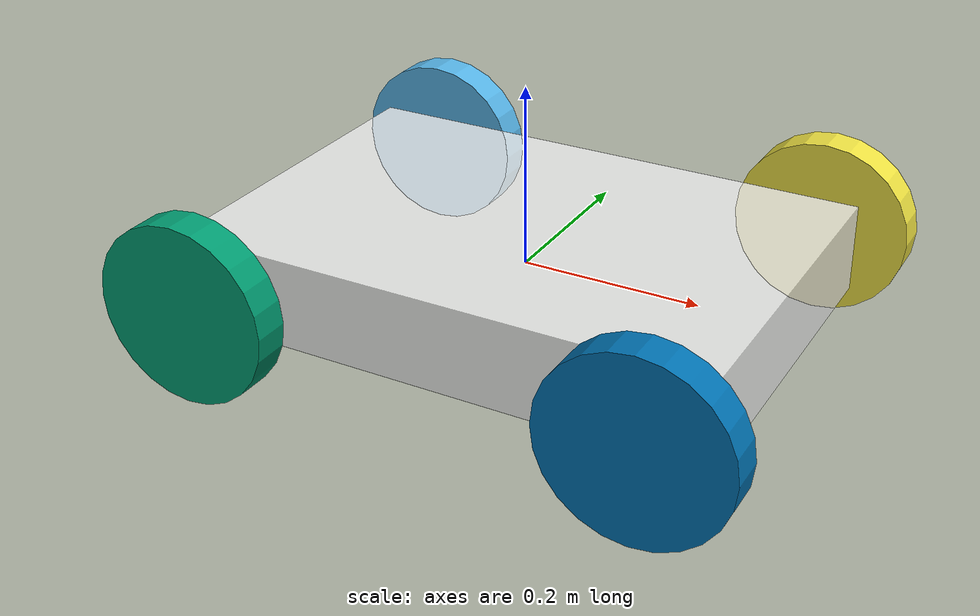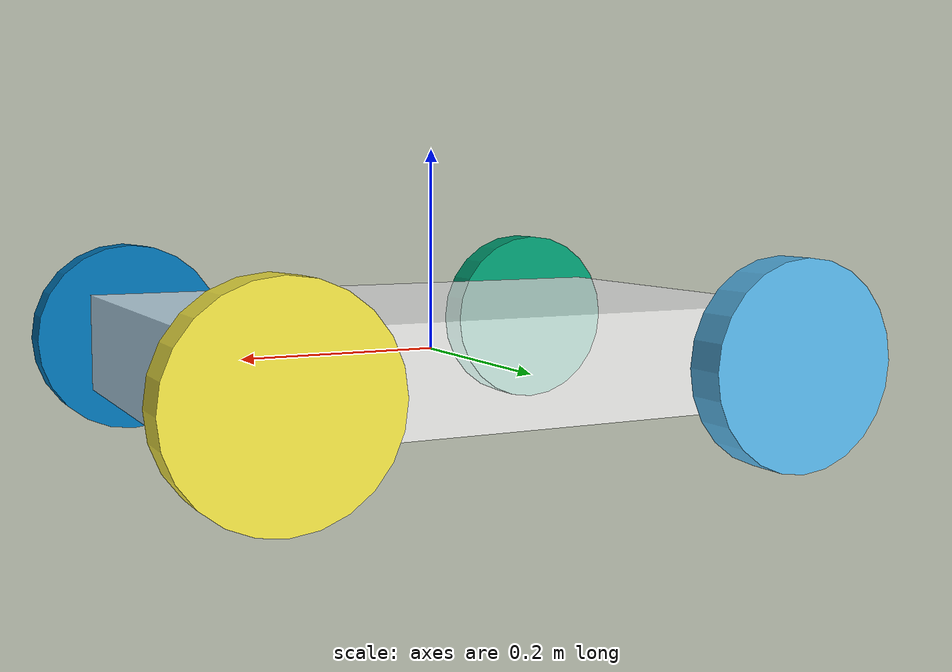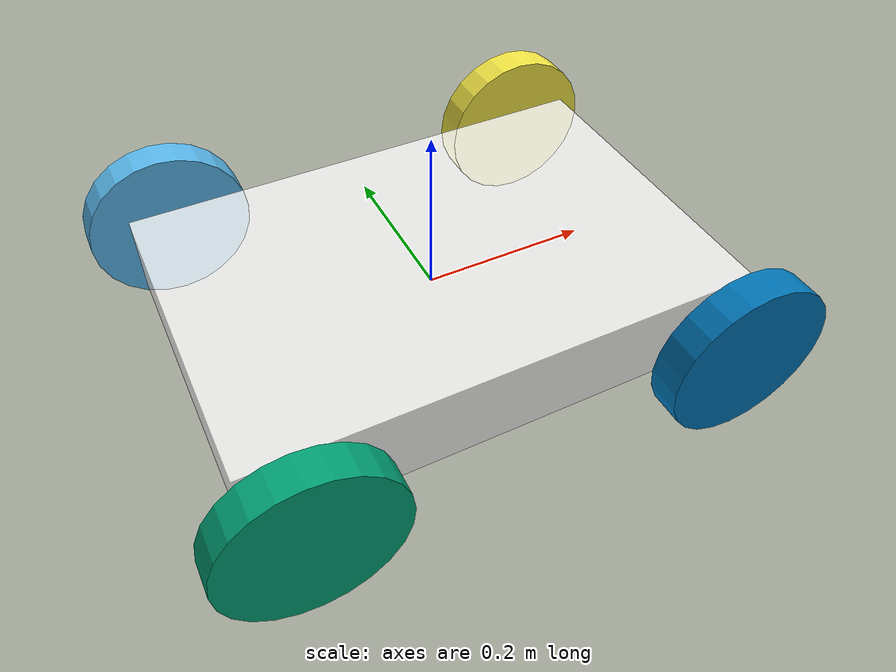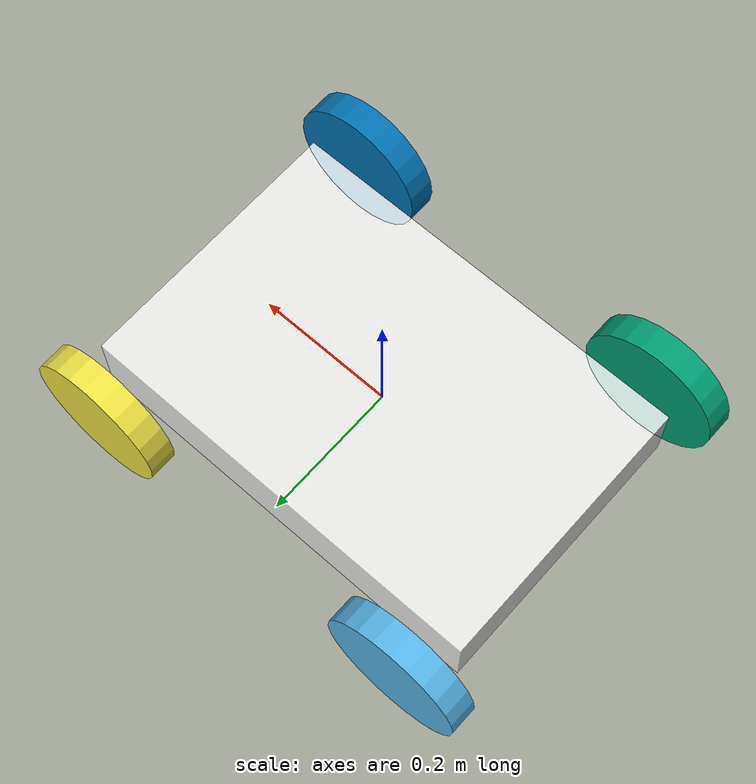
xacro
<robot xmlns:xacro="http://www.ros.org/wiki/xacro"  name="mobile_robot">
  <xacro:macro name="default_inertial" params="mass">
    <inertial>
      <mass value="${mass}" />
      <inertia ixx="1.0" ixy="0.0" ixz="0.0" iyy="1.0" iyz="0.0" izz="1.0" />
    </inertial>
  </xacro:macro>
  <xacro:macro name="wheel" params="name x y">
    <link name="${name}">
      <visual>
        <origin xyz="0 0 0" rpy="${pi/2} 0 0"/>
        <geometry>
          <cylinder length="0.04" radius="0.1"/>
        </geometry>
      </visual>
      <collision>
        <origin xyz="0 0 0" rpy="${pi/2} 0 0"/>
        <geometry>
          <cylinder length="0.04" radius="0.1"/>
        </geometry>
      </collision>
      <xacro:default_inertial mass="0.6"/>
      <xacro:default_inertial mass="6"/>
    </link>
    <joint name="base_link_${name}" type="continuous">
      <origin xyz="${y*0.25} ${x*0.25} 0" rpy="0 0 0"/>
      <axis rpy="0 0 0" xyz="0 1 0"/>
      <parent link="base_link"/>
      <child link="${name}"/>
    </joint>
    <gazebo reference="base_link_${name}_wheel">
      <mu1 value="200.0"/>
      <mu2 value="100.0"/>
      <kp value="10000000.0" />
      <kd value="1.0" />
      <material>Gazebo/Grey</material>
    </gazebo>

    <transmission name="base_link_${name}_wheel_trans">
      <type>transmission_interface/SimpleTransmission</type>
      <actuator name="base_link_${name}_wheel_motor">
        <mechanicalReduction>1</mechanicalReduction>
      </actuator>
      <joint name="base_link_${name}">
        <hardwareInterface>hardware_interface/VelocityJointInterface</hardwareInterface>
      </joint>
    </transmission>
  </xacro:macro>
  <link name="base_link">
    <visual>
      <origin xyz="0 0 0" rpy="0 0 0"/>
      <geometry>
        <box size="0.6 0.4 0.10"/>
      </geometry>
      <material name="acrylic">
        <color rgba="1 1 1 0.8"/>
      </material>
    </visual>
    <collision>
      <origin xyz="0 0 0" rpy="0 0 0"/>
      <geometry>
        <box size="0.6 0.4 0.10"/>
      </geometry>
    </collision>
  </link>
  <xacro:wheel name="wh_left_back" x="1" y="-1"/>
  <xacro:wheel name="wh_right_back" x="-1" y="-1"/>
  <xacro:wheel name="wh_left_front" x="1" y="1"/>
  <xacro:wheel name="wh_right_front" x="-1" y="1"/>
  <gazebo>
   <plugin name="gazebo_ros_control" filename="libgazebo_ros_control.so">
     <robotNamespace>/</robotNamespace>
   </plugin>
  </gazebo>
  <plugin name="differential_drive_controller" filename="libgazebo_ros_diff_drive.so">
    <alwaysOn>true</alwaysOn>
    <updateRate>20</updateRate>
    <leftJoint>base_link_wh_left_back</leftJoint>
    <rightJoint>base_link_wh_right_back</rightJoint>
    <wheelSeparation>0.5</wheelSeparation>
    <wheelDiameter>0.1</wheelDiameter>
    <torque>20</torque>
    <commandTopic>cmd_vel</commandTopic>
    <odometryTopic>odom</odometryTopic>
    <odometryFrame>odom</odometryFrame>
    <robotBaseFrame>base_footprint</robotBaseFrame>
  </plugin>
</robot>
